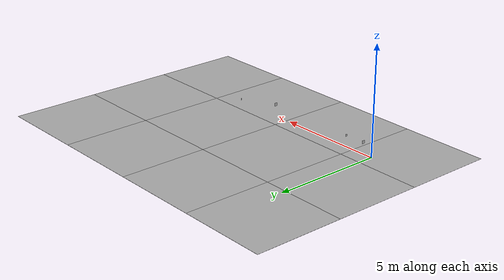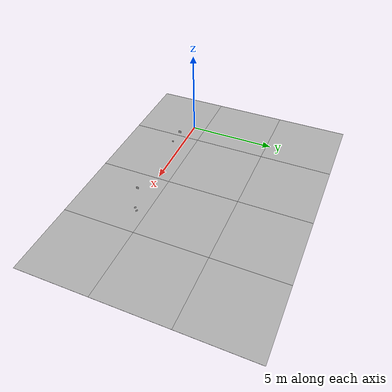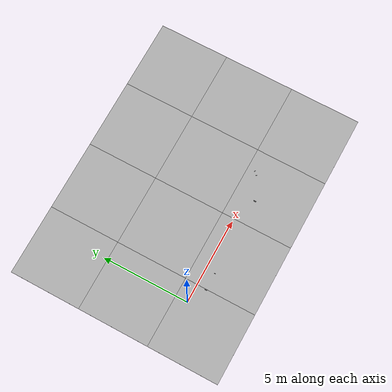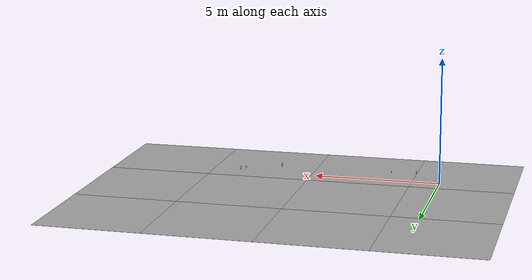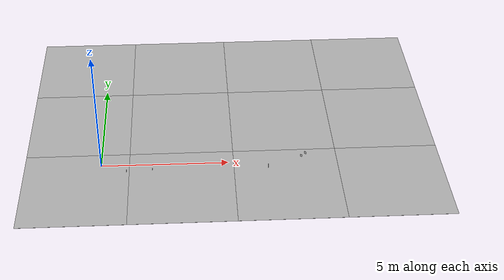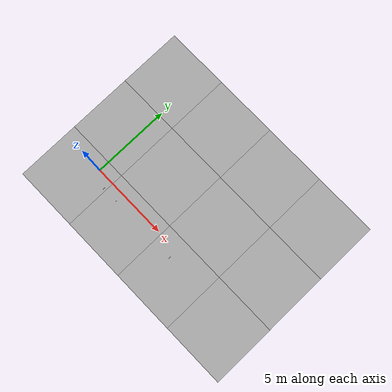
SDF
<sdf version='1.6'><world name='default'>
    <light name='sun_light' type='directional'>
      <pose frame=''>0 0 10 0 -0 0</pose>
      <diffuse>0.5 0.5 0.5 1</diffuse>
      <specular>0.1 0.1 0.1 1</specular>
      <direction>0.1 0.1 -0.9</direction>
      <attenuation>
        <range>20</range>
        <constant>0.5</constant>
        <linear>0.01</linear>
        <quadratic>0.001</quadratic>
      </attenuation>
      <cast_shadows>1</cast_shadows>
    </light>

    <model name='Tile/0-0'>
      <static>1</static>
      <link name='link'>
        <collision name='collision'>
          <geometry>
            <plane>
              <normal>0 0 1</normal>
              <size>4.096 4.096</size>
            </plane>
          </geometry>
          <surface>
            <friction>
              <ode>
                <mu>100</mu>
                <mu2>50</mu2>
              </ode>
              <torsional>
                <ode/>
              </torsional>
            </friction>
            <contact>
              <ode/>
            </contact>
            <bounce/>
          </surface>
          <max_contacts>10</max_contacts>
        </collision>
        <visual name='visual'>
          <cast_shadows>0</cast_shadows>
          <geometry>
            <plane>
              <normal>0 0 1</normal>
              <size>4.096 4.096</size>
            </plane>
          </geometry>
          <material>
            <script>
              <uri>file://materials/scripts</uri>
              <uri>file://materials/textures</uri>
              <name>Tile/d2a0822d2df9434b2a10c1df4b51959f07967b7722c4dc5c94304e16f4e1de29</name>
            </script>
          </material>
        </visual>
        <self_collide>0</self_collide>
        <enable_wind>0</enable_wind>
        <kinematic>0</kinematic>
      </link>
      <pose frame=''>-0.952 -1.3519999999999999 0 0 -0 0</pose>
    </model>

    <model name='Tile/0-1'>
      <static>1</static>
      <link name='link'>
        <collision name='collision'>
          <geometry>
            <plane>
              <normal>0 0 1</normal>
              <size>4.096 4.096</size>
            </plane>
          </geometry>
          <surface>
            <friction>
              <ode>
                <mu>100</mu>
                <mu2>50</mu2>
              </ode>
              <torsional>
                <ode/>
              </torsional>
            </friction>
            <contact>
              <ode/>
            </contact>
            <bounce/>
          </surface>
          <max_contacts>10</max_contacts>
        </collision>
        <visual name='visual'>
          <cast_shadows>0</cast_shadows>
          <geometry>
            <plane>
              <normal>0 0 1</normal>
              <size>4.096 4.096</size>
            </plane>
          </geometry>
          <material>
            <script>
              <uri>file://materials/scripts</uri>
              <uri>file://materials/textures</uri>
              <name>Tile/5eab350b8220ac9944dbdfa4ac3288c7c17e24c3bf5df0dfcf6173d64dae00a1</name>
            </script>
          </material>
        </visual>
        <self_collide>0</self_collide>
        <enable_wind>0</enable_wind>
        <kinematic>0</kinematic>
      </link>
      <pose frame=''>-0.952 2.744 0 0 -0 0</pose>
    </model>

    <model name='Tile/0-2'>
      <static>1</static>
      <link name='link'>
        <collision name='collision'>
          <geometry>
            <plane>
              <normal>0 0 1</normal>
              <size>4.096 4.096</size>
            </plane>
          </geometry>
          <surface>
            <friction>
              <ode>
                <mu>100</mu>
                <mu2>50</mu2>
              </ode>
              <torsional>
                <ode/>
              </torsional>
            </friction>
            <contact>
              <ode/>
            </contact>
            <bounce/>
          </surface>
          <max_contacts>10</max_contacts>
        </collision>
        <visual name='visual'>
          <cast_shadows>0</cast_shadows>
          <geometry>
            <plane>
              <normal>0 0 1</normal>
              <size>4.096 4.096</size>
            </plane>
          </geometry>
          <material>
            <script>
              <uri>file://materials/scripts</uri>
              <uri>file://materials/textures</uri>
              <name>Tile/5eab350b8220ac9944dbdfa4ac3288c7c17e24c3bf5df0dfcf6173d64dae00a1</name>
            </script>
          </material>
        </visual>
        <self_collide>0</self_collide>
        <enable_wind>0</enable_wind>
        <kinematic>0</kinematic>
      </link>
      <pose frame=''>-0.952 6.84 0 0 -0 0</pose>
    </model>

    <model name='Tile/1-0'>
      <static>1</static>
      <link name='link'>
        <collision name='collision'>
          <geometry>
            <plane>
              <normal>0 0 1</normal>
              <size>4.096 4.096</size>
            </plane>
          </geometry>
          <surface>
            <friction>
              <ode>
                <mu>100</mu>
                <mu2>50</mu2>
              </ode>
              <torsional>
                <ode/>
              </torsional>
            </friction>
            <contact>
              <ode/>
            </contact>
            <bounce/>
          </surface>
          <max_contacts>10</max_contacts>
        </collision>
        <visual name='visual'>
          <cast_shadows>0</cast_shadows>
          <geometry>
            <plane>
              <normal>0 0 1</normal>
              <size>4.096 4.096</size>
            </plane>
          </geometry>
          <material>
            <script>
              <uri>file://materials/scripts</uri>
              <uri>file://materials/textures</uri>
              <name>Tile/dc9691830e76bd1b394f4edda9f5b939690e367b9e0f2044e88dd90e6eee6377</name>
            </script>
          </material>
        </visual>
        <self_collide>0</self_collide>
        <enable_wind>0</enable_wind>
        <kinematic>0</kinematic>
      </link>
      <pose frame=''>3.144 -1.3519999999999999 0 0 -0 0</pose>
    </model>

    <model name='Tile/1-1'>
      <static>1</static>
      <link name='link'>
        <collision name='collision'>
          <geometry>
            <plane>
              <normal>0 0 1</normal>
              <size>4.096 4.096</size>
            </plane>
          </geometry>
          <surface>
            <friction>
              <ode>
                <mu>100</mu>
                <mu2>50</mu2>
              </ode>
              <torsional>
                <ode/>
              </torsional>
            </friction>
            <contact>
              <ode/>
            </contact>
            <bounce/>
          </surface>
          <max_contacts>10</max_contacts>
        </collision>
        <visual name='visual'>
          <cast_shadows>0</cast_shadows>
          <geometry>
            <plane>
              <normal>0 0 1</normal>
              <size>4.096 4.096</size>
            </plane>
          </geometry>
          <material>
            <script>
              <uri>file://materials/scripts</uri>
              <uri>file://materials/textures</uri>
              <name>Tile/5eab350b8220ac9944dbdfa4ac3288c7c17e24c3bf5df0dfcf6173d64dae00a1</name>
            </script>
          </material>
        </visual>
        <self_collide>0</self_collide>
        <enable_wind>0</enable_wind>
        <kinematic>0</kinematic>
      </link>
      <pose frame=''>3.144 2.744 0 0 -0 0</pose>
    </model>

    <model name='Tile/1-2'>
      <static>1</static>
      <link name='link'>
        <collision name='collision'>
          <geometry>
            <plane>
              <normal>0 0 1</normal>
              <size>4.096 4.096</size>
            </plane>
          </geometry>
          <surface>
            <friction>
              <ode>
                <mu>100</mu>
                <mu2>50</mu2>
              </ode>
              <torsional>
                <ode/>
              </torsional>
            </friction>
            <contact>
              <ode/>
            </contact>
            <bounce/>
          </surface>
          <max_contacts>10</max_contacts>
        </collision>
        <visual name='visual'>
          <cast_shadows>0</cast_shadows>
          <geometry>
            <plane>
              <normal>0 0 1</normal>
              <size>4.096 4.096</size>
            </plane>
          </geometry>
          <material>
            <script>
              <uri>file://materials/scripts</uri>
              <uri>file://materials/textures</uri>
              <name>Tile/5eab350b8220ac9944dbdfa4ac3288c7c17e24c3bf5df0dfcf6173d64dae00a1</name>
            </script>
          </material>
        </visual>
        <self_collide>0</self_collide>
        <enable_wind>0</enable_wind>
        <kinematic>0</kinematic>
      </link>
      <pose frame=''>3.144 6.84 0 0 -0 0</pose>
    </model>

    <model name='Tile/2-0'>
      <static>1</static>
      <link name='link'>
        <collision name='collision'>
          <geometry>
            <plane>
              <normal>0 0 1</normal>
              <size>4.096 4.096</size>
            </plane>
          </geometry>
          <surface>
            <friction>
              <ode>
                <mu>100</mu>
                <mu2>50</mu2>
              </ode>
              <torsional>
                <ode/>
              </torsional>
            </friction>
            <contact>
              <ode/>
            </contact>
            <bounce/>
          </surface>
          <max_contacts>10</max_contacts>
        </collision>
        <visual name='visual'>
          <cast_shadows>0</cast_shadows>
          <geometry>
            <plane>
              <normal>0 0 1</normal>
              <size>4.096 4.096</size>
            </plane>
          </geometry>
          <material>
            <script>
              <uri>file://materials/scripts</uri>
              <uri>file://materials/textures</uri>
              <name>Tile/dbb231cb03752a7dec105263fd6bbf458d06779ed398b99b31009fd7b126e874</name>
            </script>
          </material>
        </visual>
        <self_collide>0</self_collide>
        <enable_wind>0</enable_wind>
        <kinematic>0</kinematic>
      </link>
      <pose frame=''>7.24 -1.3519999999999999 0 0 -0 0</pose>
    </model>

    <model name='Tile/2-1'>
      <static>1</static>
      <link name='link'>
        <collision name='collision'>
          <geometry>
            <plane>
              <normal>0 0 1</normal>
              <size>4.096 4.096</size>
            </plane>
          </geometry>
          <surface>
            <friction>
              <ode>
                <mu>100</mu>
                <mu2>50</mu2>
              </ode>
              <torsional>
                <ode/>
              </torsional>
            </friction>
            <contact>
              <ode/>
            </contact>
            <bounce/>
          </surface>
          <max_contacts>10</max_contacts>
        </collision>
        <visual name='visual'>
          <cast_shadows>0</cast_shadows>
          <geometry>
            <plane>
              <normal>0 0 1</normal>
              <size>4.096 4.096</size>
            </plane>
          </geometry>
          <material>
            <script>
              <uri>file://materials/scripts</uri>
              <uri>file://materials/textures</uri>
              <name>Tile/3566d198af8789156eb826c8624b4eca3de5b69db9a7dd83d0050a3f95b35aa2</name>
            </script>
          </material>
        </visual>
        <self_collide>0</self_collide>
        <enable_wind>0</enable_wind>
        <kinematic>0</kinematic>
      </link>
      <pose frame=''>7.24 2.744 0 0 -0 0</pose>
    </model>

    <model name='Tile/2-2'>
      <static>1</static>
      <link name='link'>
        <collision name='collision'>
          <geometry>
            <plane>
              <normal>0 0 1</normal>
              <size>4.096 4.096</size>
            </plane>
          </geometry>
          <surface>
            <friction>
              <ode>
                <mu>100</mu>
                <mu2>50</mu2>
              </ode>
              <torsional>
                <ode/>
              </torsional>
            </friction>
            <contact>
              <ode/>
            </contact>
            <bounce/>
          </surface>
          <max_contacts>10</max_contacts>
        </collision>
        <visual name='visual'>
          <cast_shadows>0</cast_shadows>
          <geometry>
            <plane>
              <normal>0 0 1</normal>
              <size>4.096 4.096</size>
            </plane>
          </geometry>
          <material>
            <script>
              <uri>file://materials/scripts</uri>
              <uri>file://materials/textures</uri>
              <name>Tile/5eab350b8220ac9944dbdfa4ac3288c7c17e24c3bf5df0dfcf6173d64dae00a1</name>
            </script>
          </material>
        </visual>
        <self_collide>0</self_collide>
        <enable_wind>0</enable_wind>
        <kinematic>0</kinematic>
      </link>
      <pose frame=''>7.24 6.84 0 0 -0 0</pose>
    </model>

    <model name='Tile/3-0'>
      <static>1</static>
      <link name='link'>
        <collision name='collision'>
          <geometry>
            <plane>
              <normal>0 0 1</normal>
              <size>4.096 4.096</size>
            </plane>
          </geometry>
          <surface>
            <friction>
              <ode>
                <mu>100</mu>
                <mu2>50</mu2>
              </ode>
              <torsional>
                <ode/>
              </torsional>
            </friction>
            <contact>
              <ode/>
            </contact>
            <bounce/>
          </surface>
          <max_contacts>10</max_contacts>
        </collision>
        <visual name='visual'>
          <cast_shadows>0</cast_shadows>
          <geometry>
            <plane>
              <normal>0 0 1</normal>
              <size>4.096 4.096</size>
            </plane>
          </geometry>
          <material>
            <script>
              <uri>file://materials/scripts</uri>
              <uri>file://materials/textures</uri>
              <name>Tile/5eab350b8220ac9944dbdfa4ac3288c7c17e24c3bf5df0dfcf6173d64dae00a1</name>
            </script>
          </material>
        </visual>
        <self_collide>0</self_collide>
        <enable_wind>0</enable_wind>
        <kinematic>0</kinematic>
      </link>
      <pose frame=''>11.336 -1.3519999999999999 0 0 -0 0</pose>
    </model>

    <model name='Tile/3-1'>
      <static>1</static>
      <link name='link'>
        <collision name='collision'>
          <geometry>
            <plane>
              <normal>0 0 1</normal>
              <size>4.096 4.096</size>
            </plane>
          </geometry>
          <surface>
            <friction>
              <ode>
                <mu>100</mu>
                <mu2>50</mu2>
              </ode>
              <torsional>
                <ode/>
              </torsional>
            </friction>
            <contact>
              <ode/>
            </contact>
            <bounce/>
          </surface>
          <max_contacts>10</max_contacts>
        </collision>
        <visual name='visual'>
          <cast_shadows>0</cast_shadows>
          <geometry>
            <plane>
              <normal>0 0 1</normal>
              <size>4.096 4.096</size>
            </plane>
          </geometry>
          <material>
            <script>
              <uri>file://materials/scripts</uri>
              <uri>file://materials/textures</uri>
              <name>Tile/5eab350b8220ac9944dbdfa4ac3288c7c17e24c3bf5df0dfcf6173d64dae00a1</name>
            </script>
          </material>
        </visual>
        <self_collide>0</self_collide>
        <enable_wind>0</enable_wind>
        <kinematic>0</kinematic>
      </link>
      <pose frame=''>11.336 2.744 0 0 -0 0</pose>
    </model>

    <model name='Tile/3-2'>
      <static>1</static>
      <link name='link'>
        <collision name='collision'>
          <geometry>
            <plane>
              <normal>0 0 1</normal>
              <size>4.096 4.096</size>
            </plane>
          </geometry>
          <surface>
            <friction>
              <ode>
                <mu>100</mu>
                <mu2>50</mu2>
              </ode>
              <torsional>
                <ode/>
              </torsional>
            </friction>
            <contact>
              <ode/>
            </contact>
            <bounce/>
          </surface>
          <max_contacts>10</max_contacts>
        </collision>
        <visual name='visual'>
          <cast_shadows>0</cast_shadows>
          <geometry>
            <plane>
              <normal>0 0 1</normal>
              <size>4.096 4.096</size>
            </plane>
          </geometry>
          <material>
            <script>
              <uri>file://materials/scripts</uri>
              <uri>file://materials/textures</uri>
              <name>Tile/5eab350b8220ac9944dbdfa4ac3288c7c17e24c3bf5df0dfcf6173d64dae00a1</name>
            </script>
          </material>
        </visual>
        <self_collide>0</self_collide>
        <enable_wind>0</enable_wind>
        <kinematic>0</kinematic>
      </link>
      <pose frame=''>11.336 6.84 0 0 -0 0</pose>
    </model>

    <model name='Sign/-5'>
      <static>1</static>
      <link name='link'>
        <visual name='visual'>
          <cast_shadows>0</cast_shadows>
          <geometry>
            <plane>
              <normal>0 0 1</normal>
              <size>0.15 0.15</size>
            </plane>
          </geometry>
          <material>
            <script>
              <uri>file://materials/scripts</uri>
              <uri>file://materials/textures</uri>
              <name>Sign/stvo-274.1</name>
            </script>
          </material>
        </visual>
        <self_collide>0</self_collide>
        <enable_wind>0</enable_wind>
        <kinematic>0</kinematic>
      </link>
      <pose frame=''>1.005 -0.55 0.22499999999999998 1.5707963267948966 0 4.71238898038469</pose>
    </model>

    <model name='Sign/-10'>
      <static>1</static>
      <link name='link'>
        <visual name='visual'>
          <cast_shadows>0</cast_shadows>
          <geometry>
            <plane>
              <normal>0 0 1</normal>
              <size>0.1 0.1</size>
            </plane>
          </geometry>
          <material>
            <script>
              <uri>file://materials/scripts</uri>
              <uri>file://materials/textures</uri>
              <name>Sign/stvo-208</name>
            </script>
          </material>
        </visual>
        <self_collide>0</self_collide>
        <enable_wind>0</enable_wind>
        <kinematic>0</kinematic>
      </link>
      <pose frame=''>2.0149999999999997 -0.55 0.2 1.5707963267948966 0 4.71238898038469</pose>
    </model>

    <model name='Sign/-22'>
      <static>1</static>
      <link name='link'>
        <visual name='visual'>
          <cast_shadows>0</cast_shadows>
          <geometry>
            <plane>
              <normal>0 0 1</normal>
              <size>0.15 0.15</size>
            </plane>
          </geometry>
          <material>
            <script>
              <uri>file://materials/scripts</uri>
              <uri>file://materials/textures</uri>
              <name>Sign/stvo-274.2</name>
            </script>
          </material>
        </visual>
        <self_collide>0</self_collide>
        <enable_wind>0</enable_wind>
        <kinematic>0</kinematic>
      </link>
      <pose frame=''>6.5249999999999995 -0.55 0.22499999999999998 1.5707963267948966 0 4.71238898038469</pose>
    </model>

    <model name='Sign/-35'>
      <static>1</static>
      <link name='link'>
        <visual name='visual'>
          <cast_shadows>0</cast_shadows>
          <geometry>
            <plane>
              <normal>0 0 1</normal>
              <size>0.1 0.1</size>
            </plane>
          </geometry>
          <material>
            <script>
              <uri>file://materials/scripts</uri>
              <uri>file://materials/textures</uri>
              <name>Sign/stvo-209-10</name>
            </script>
          </material>
        </visual>
        <self_collide>0</self_collide>
        <enable_wind>0</enable_wind>
        <kinematic>0</kinematic>
      </link>
      <pose frame=''>8.050279579551077 0.2332738110421968 0.2 1.5707963267948966 0 5.497787143782138</pose>
    </model>

    <model name='Sign/-36'>
      <static>1</static>
      <link name='link'>
        <visual name='visual'>
          <cast_shadows>0</cast_shadows>
          <geometry>
            <plane>
              <normal>0 0 1</normal>
              <size>0.1 0.1</size>
            </plane>
          </geometry>
          <material>
            <script>
              <uri>file://materials/scripts</uri>
              <uri>file://materials/textures</uri>
              <name>Sign/stvo-205</name>
            </script>
          </material>
        </visual>
        <self_collide>0</self_collide>
        <enable_wind>0</enable_wind>
        <kinematic>0</kinematic>
      </link>
      <pose frame=''>7.87350288425444 0.05649711574555982 0.2 1.5707963267948966 0 5.497787143782138</pose>
    </model>
    </world></sdf>
